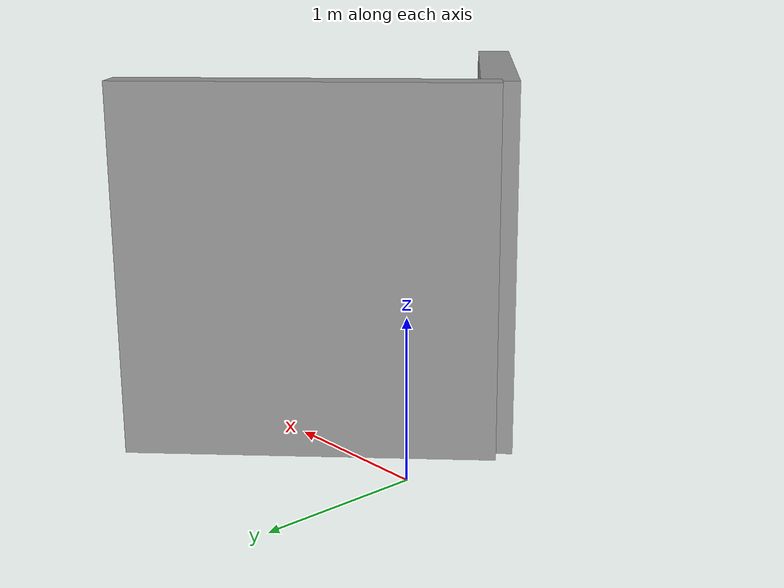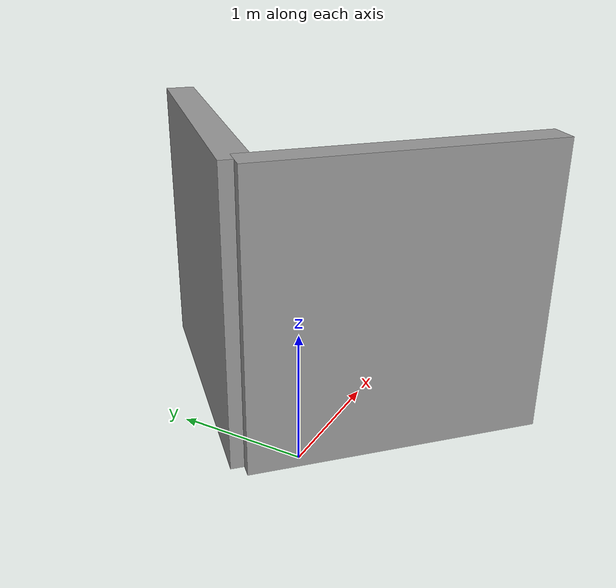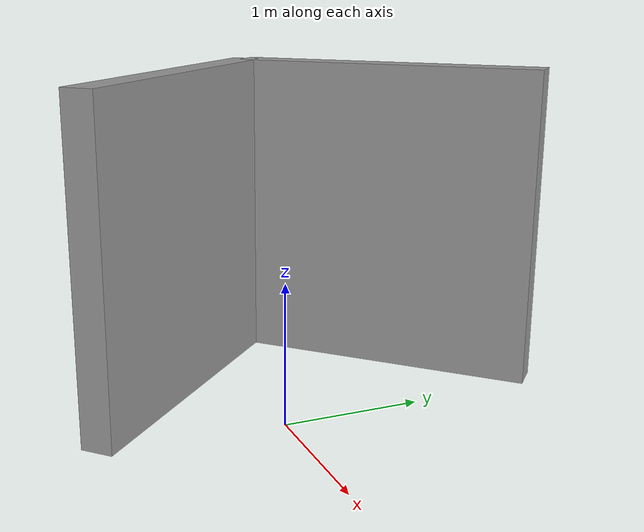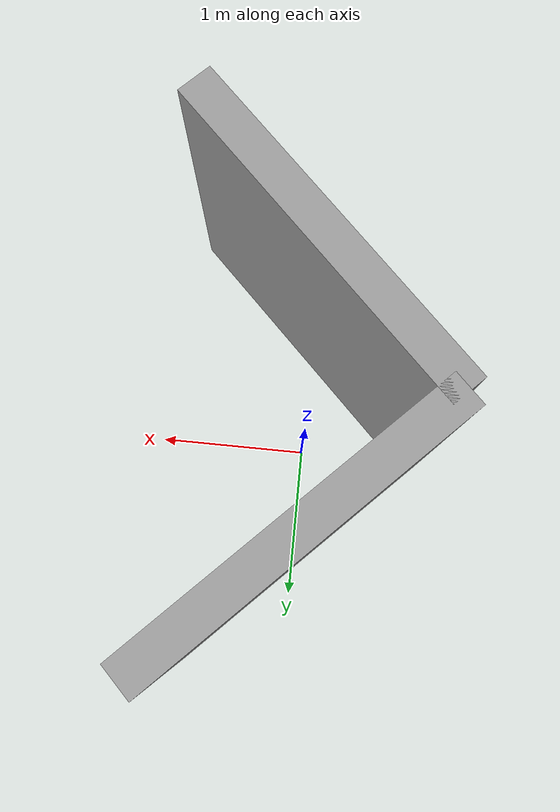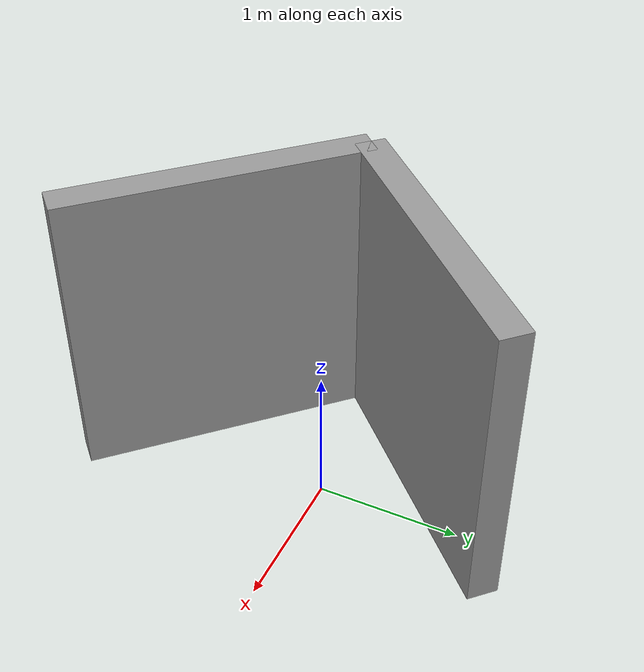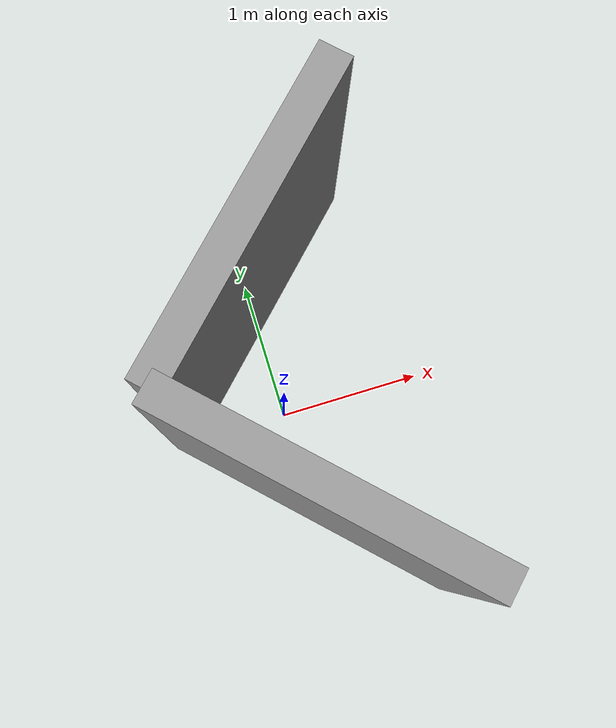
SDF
<sdf version='1.6'>
  <model name = 'corner'>
  <model name='wall_1'>
      <static>1</static>
      <link name='link'>
        <pose frame=''>0 0 1.4 0 -0 0</pose>
        <collision name='collision'>
          <geometry>
            <box>
              <size>2 0.2 2</size>
            </box>
          </geometry>
          <max_contacts>10</max_contacts>
        </collision>
        <visual name='visual'>
          <cast_shadows>0</cast_shadows>
          <geometry>
            <box>
              <size>2 0.2 2</size>
            </box>
          </geometry>
          <material>
            <script>
              <uri>model://grey_wall/materials/scripts</uri>
              <uri>model://grey_wall/materials/textures</uri>
              <name>vrc/grey_wall</name>
            </script>
          </material>
        </visual>
      </link>
      <pose frame=''>0 -0.7 0 0 0 -0.785</pose>
    </model>

  <model name='wall_2'>
      <static>1</static>
      <link name='link'>
        <pose frame=''>0 0 1.4 0 -0 0</pose>
        <collision name='collision'>
          <geometry>
            <box>
              <size>2 0.2 2</size>
            </box>
          </geometry>
          <max_contacts>10</max_contacts>
        </collision>
        <visual name='visual'>
          <cast_shadows>0</cast_shadows>
          <geometry>
            <box>
              <size>2 0.2 2</size>
            </box>
          </geometry>
          <material>
            <script>
              <uri>model://grey_wall/materials/scripts</uri>
              <uri>model://grey_wall/materials/textures</uri>
              <name>vrc/grey_wall</name>
            </script>
          </material>
        </visual>
      </link>
      <pose frame=''>0 0.7 0 0 0 0.785</pose>
    </model>

    <pose frame=''>0 0 0 0 0 0</pose>
</model>
</sdf>
